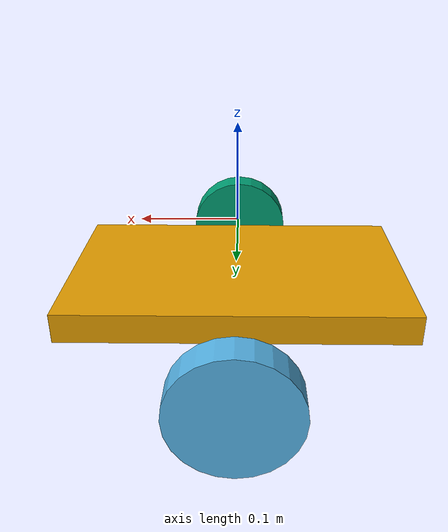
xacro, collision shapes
<?xml version="1.0"?>
<robot xmlns:xacro="http://www.ros.org/wiki/xacro" name="balance">
  <xacro:arg name="load_chassis" default="true"/>
  <xacro:arg name="load_gimbal" default="true"/>
  <xacro:arg name="load_shooter" default="true"/>
  <xacro:arg name="use_simulation" default="true"/>

  <xacro:if value="$(arg load_chassis)">
    <xacro:include filename="$(find rm_description)/urdf/balance/chassis.urdf.xacro"/>
    <xacro:chassis/>
  </xacro:if>

  <xacro:if value="$(arg load_gimbal)">
  </xacro:if>

  <xacro:if value="$(arg load_shooter)">
  </xacro:if>

  <xacro:if value="$(arg use_simulation)">
    <gazebo>
      <plugin name="rm_ros_control" filename="librm_robot_hw_sim.so">
        <robotNamespace>/</robotNamespace>
        <robotSimType>rm_gazebo/RmRobotHWSim</robotSimType>
      </plugin>
    </gazebo>
    <gazebo reference="base_link">
      <gravity>true</gravity>
      <sensor name="imu_sensor" type="imu">
        <always_on>true</always_on>
        <update_rate>1000</update_rate>
        <visualize>true</visualize>
        <topic>__default_topic__</topic>
        <plugin filename="libgazebo_ros_imu_sensor.so" name="imu_plugin">
          <topicName>base_imu</topicName>
          <bodyName>imu_link</bodyName>
          <updateRateHZ>1000.0</updateRateHZ>
          <gaussianNoise>0.0</gaussianNoise>
          <xyzOffset>0 0 0</xyzOffset>
          <rpyOffset>0 0 0</rpyOffset>
          <frameName>imu_link</frameName>
          <initialOrientationAsReference>false</initialOrientationAsReference>
        </plugin>
        <pose>0 0 0 0 0 0</pose>
      </sensor>
    </gazebo>
  </xacro:if>

</robot>

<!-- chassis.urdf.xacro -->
<robot xmlns:xacro="http://www.ros.org/wiki/xacro">

    <xacro:include filename="$(find rm_description)/urdf/balance/rubber_wheel.urdf.xacro"/>

    <!-- https://upload.wikimedia.org/wikipedia/commons/5/52/Wheelbase_and_Track.png -->
    <xacro:property name="wheel_base" value="0.405"/>
    <xacro:property name="wheel_offset_z" value="-0.085"/>

    <xacro:macro name="chassis">

        <link name="base_link">
            <inertial>
                <mass value="17.21"/>
                <origin xyz="-0.006488 0.006497 0.062596"/>
                <inertia ixx="0.2744" ixy="-2.342e-5" ixz="2.162e-3" iyy="0.2444"
                         iyz="-2.346e-3" izz="0.1928"/>
            </inertial>
            <visual>
                <origin xyz="0 0 0" rpy="0 0 0"/>
                <geometry>
                    <mesh filename="package://rm_description/meshes/balance/base.stl" scale="0.001 0.001 0.001"/>
                </geometry>
            </visual>
            <collision>
                <origin xyz="0 0 -0.067" rpy="0 0 0"/>
                <geometry>
                    <box size="0.35 0.22 0.03"/>
                </geometry>
            </collision>
        </link>

        <xacro:rubber_wheel prefix="left" connected_to="base_link"
                            wheel_x_offset="0" wheel_y_offset="${wheel_base/2}"
                            wheel_z_offset="${wheel_offset_z}" mechanical_reduction="-0.166"/>
        <xacro:rubber_wheel prefix="right" connected_to="base_link"
                            wheel_x_offset="0" wheel_y_offset="${-wheel_base/2}"
                            wheel_z_offset="${wheel_offset_z}" mechanical_reduction="0.166"/>

    </xacro:macro>

</robot>

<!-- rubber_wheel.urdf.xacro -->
<robot xmlns:xacro="http://www.ros.org/wiki/xacro">

    <xacro:property name="wheel_radius" value="0.06"/>
    <xacro:property name="wheel_width" value="0.032"/>
    <xacro:property name="wheel_joint_effort" value="1.0"/>
    <xacro:property name="wheel_joint_velocity" value="50"/>

    <xacro:macro name="rubber_wheel"
                 params="prefix connected_to wheel_x_offset wheel_y_offset wheel_z_offset mechanical_reduction">
        <!--  link  -->
        <link name="${prefix}_wheel">
            <visual>
                <geometry>
                    <xacro:if value="${prefix=='left'}">
                        <mesh filename="package://rm_description/meshes/balance/left_rubber_wheel.stl"
                              scale="0.001 0.001 0.001"/>
                    </xacro:if>
                    <xacro:if value="${prefix=='right'}">
                        <mesh filename="package://rm_description/meshes/balance/right_rubber_wheel.stl"
                              scale="0.001 0.001 0.001"/>
                    </xacro:if>
                </geometry>
            </visual>
            <collision>
                <origin rpy="1.57 0 0" xyz="0 0 0"/>
                <geometry>
                    <cylinder length="0.032" radius="0.06"/>
                </geometry>
            </collision>
            <inertial>
                <mass value="0.23"/>
                <xacro:if value="${prefix=='left'}">
                    <origin xyz="0 0.00419 0"/>
                </xacro:if>
                <xacro:if value="${prefix=='right'}">
                    <origin xyz="0 -0.00419 0"/>
                </xacro:if>
                <inertia ixx="3.048e-4" ixy="0.0" ixz="0.0" iyy="5.647e-4" iyz="0.0" izz="3.048e-4"/>
            </inertial>
        </link>

        <!--  joint  -->
        <joint name="${prefix}_wheel_joint" type="revolute">
            <axis xyz="0 1 0"/>
            <origin xyz="${wheel_x_offset} ${wheel_y_offset} ${wheel_z_offset}" rpy="0 0 0"/>
            <!--      limit not work while type="continuous"-->
            <limit effort="${wheel_joint_effort}" velocity="${wheel_joint_velocity}" lower="-1e16" upper="1e16"/>
            <dynamics damping="0.0" friction="0.05"/>
            <parent link="${connected_to}"/>
            <child link="${prefix}_wheel"/>
        </joint>

        <!-- transmission -->
        <transmission name="${prefix}_wheel_trans">
            <type>transmission_interface/SimpleTransmission</type>
            <actuator name="${prefix}_wheel_actuator">
                <hardwareInterface>hardware_interface/EffortJointInterface</hardwareInterface>
                <mechanicalReduction>${mechanical_reduction}</mechanicalReduction>
            </actuator>
            <joint name="${prefix}_wheel_joint">
            </joint>
        </transmission>

    </xacro:macro>

</robot>
